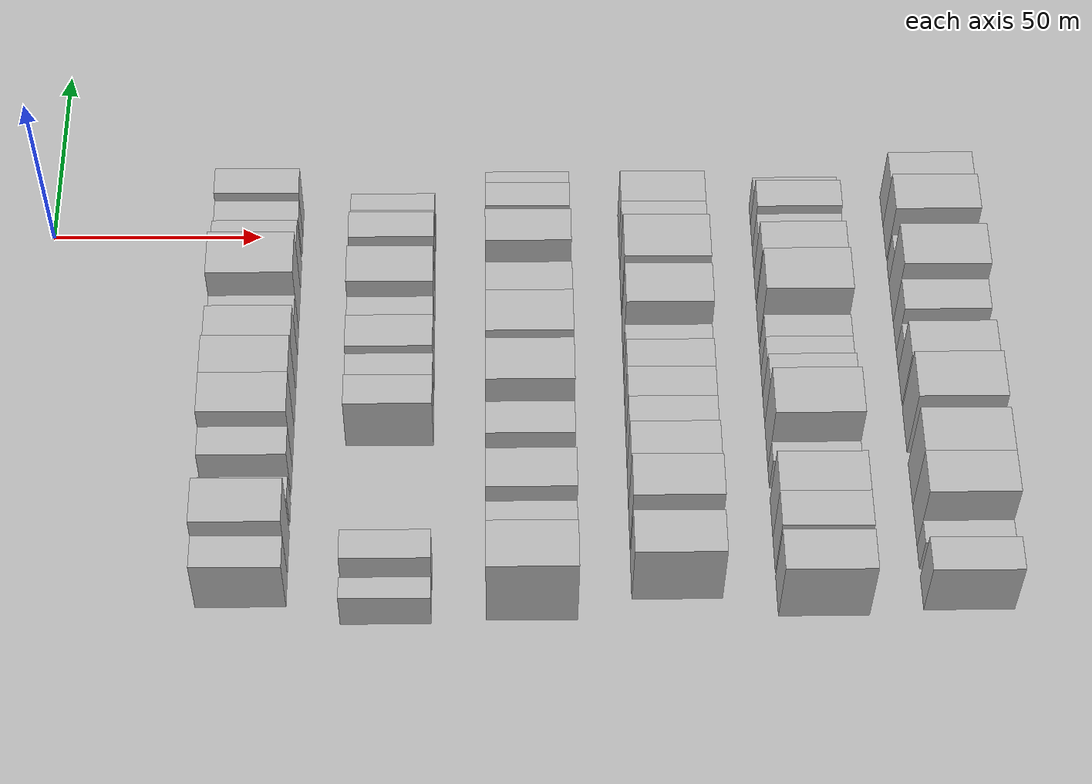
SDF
<sdf version="1.6">
 <world name="default">
  <include><name>ground_plane_1</name><uri>model://HANNAS_ground_plane</uri></include>
  <include>
   <name>ground_plane_2</name>
   <uri>model://HANNAS_ground_plane</uri>
   <pose>100 0 0  0 0 0</pose>
  </include>
  <model name="building_44">
   <static>1</static>
   <pose>50.0000 -97.8108 0 0.000000 0.000000 0.000000</pose>
   <link name="link">
    <pose>0 0 9.00 0 0 0</pose>
    <collision name="collision"><geometry><box><size>20.0000 7.8151 18.0000</size></box></geometry></collision>
    <visual name="visual">
     <cast_shadows>0</cast_shadows>
     <geometry><box><size>20.0000 7.8151 18.0000</size></box></geometry>
     <material>
      <script>
       <uri>model://HANNAS_wall/materials/scripts</uri>
       <uri>model://HANNAS_wall/materials/textures</uri>
       <name>vrc/HANNAS_wall</name>
      </script>
     </material>
    </visual>
   </link>
  </model>
  <model name="building_45">
   <static>1</static>
   <pose>50.0000 -88.4266 0 0.000000 0.000000 0.000000</pose>
   <link name="link">
    <pose>0 0 12.00 0 0 0</pose>
    <collision name="collision"><geometry><box><size>20.0000 10.9532 24.0000</size></box></geometry></collision>
    <visual name="visual">
     <cast_shadows>0</cast_shadows>
     <geometry><box><size>20.0000 10.9532 24.0000</size></box></geometry>
     <material>
      <script>
       <uri>model://HANNAS_wall/materials/scripts</uri>
       <uri>model://HANNAS_wall/materials/textures</uri>
       <name>vrc/HANNAS_wall</name>
      </script>
     </material>
    </visual>
   </link>
  </model>
  <model name="building_46">
   <static>1</static>
   <pose>50.0000 -78.0642 0 0.000000 0.000000 0.000000</pose>
   <link name="link">
    <pose>0 0 6.00 0 0 0</pose>
    <collision name="collision"><geometry><box><size>20.0000 5.7716 12.0000</size></box></geometry></collision>
    <visual name="visual">
     <cast_shadows>0</cast_shadows>
     <geometry><box><size>20.0000 5.7716 12.0000</size></box></geometry>
     <material>
      <script>
       <uri>model://HANNAS_wall/materials/scripts</uri>
       <uri>model://HANNAS_wall/materials/textures</uri>
       <name>vrc/HANNAS_wall</name>
      </script>
     </material>
    </visual>
   </link>
  </model>
  <model name="building_47">
   <static>1</static>
   <pose>50.0000 -69.4956 0 0.000000 0.000000 0.000000</pose>
   <link name="link">
    <pose>0 0 9.00 0 0 0</pose>
    <collision name="collision"><geometry><box><size>20.0000 7.3656 18.0000</size></box></geometry></collision>
    <visual name="visual">
     <cast_shadows>0</cast_shadows>
     <geometry><box><size>20.0000 7.3656 18.0000</size></box></geometry>
     <material>
      <script>
       <uri>model://HANNAS_wall/materials/scripts</uri>
       <uri>model://HANNAS_wall/materials/textures</uri>
       <name>vrc/HANNAS_wall</name>
      </script>
     </material>
    </visual>
   </link>
  </model>
  <model name="building_48">
   <static>1</static>
   <pose>50.0000 -60.5503 0 0.000000 0.000000 0.000000</pose>
   <link name="link">
    <pose>0 0 12.00 0 0 0</pose>
    <collision name="collision"><geometry><box><size>20.0000 10.5250 24.0000</size></box></geometry></collision>
    <visual name="visual">
     <cast_shadows>0</cast_shadows>
     <geometry><box><size>20.0000 10.5250 24.0000</size></box></geometry>
     <material>
      <script>
       <uri>model://HANNAS_wall/materials/scripts</uri>
       <uri>model://HANNAS_wall/materials/textures</uri>
       <name>vrc/HANNAS_wall</name>
      </script>
     </material>
    </visual>
   </link>
  </model>
  <model name="building_49">
   <static>1</static>
   <pose>50.0000 -50.3264 0 0.000000 0.000000 0.000000</pose>
   <link name="link">
    <pose>0 0 12.00 0 0 0</pose>
    <collision name="collision"><geometry><box><size>20.0000 9.9229 24.0000</size></box></geometry></collision>
    <visual name="visual">
     <cast_shadows>0</cast_shadows>
     <geometry><box><size>20.0000 9.9229 24.0000</size></box></geometry>
     <material>
      <script>
       <uri>model://HANNAS_wall/materials/scripts</uri>
       <uri>model://HANNAS_wall/materials/textures</uri>
       <name>vrc/HANNAS_wall</name>
      </script>
     </material>
    </visual>
   </link>
  </model>
  <model name="building_50">
   <static>1</static>
   <pose>50.0000 -40.1800 0 0.000000 0.000000 0.000000</pose>
   <link name="link">
    <pose>0 0 10.50 0 0 0</pose>
    <collision name="collision"><geometry><box><size>20.0000 10.3700 21.0000</size></box></geometry></collision>
    <visual name="visual">
     <cast_shadows>0</cast_shadows>
     <geometry><box><size>20.0000 10.3700 21.0000</size></box></geometry>
     <material>
      <script>
       <uri>model://HANNAS_wall/materials/scripts</uri>
       <uri>model://HANNAS_wall/materials/textures</uri>
       <name>vrc/HANNAS_wall</name>
      </script>
     </material>
    </visual>
   </link>
  </model>
  <model name="building_51">
   <static>1</static>
   <pose>50.0000 -31.4588 0 0.000000 0.000000 0.000000</pose>
   <link name="link">
    <pose>0 0 7.50 0 0 0</pose>
    <collision name="collision"><geometry><box><size>20.0000 7.0724 15.0000</size></box></geometry></collision>
    <visual name="visual">
     <cast_shadows>0</cast_shadows>
     <geometry><box><size>20.0000 7.0724 15.0000</size></box></geometry>
     <material>
      <script>
       <uri>model://HANNAS_wall/materials/scripts</uri>
       <uri>model://HANNAS_wall/materials/textures</uri>
       <name>vrc/HANNAS_wall</name>
      </script>
     </material>
    </visual>
   </link>
  </model>
  <model name="building_52">
   <static>1</static>
   <pose>50.0000 -22.1356 0 0.000000 0.000000 0.000000</pose>
   <link name="link">
    <pose>0 0 12.00 0 0 0</pose>
    <collision name="collision"><geometry><box><size>20.0000 11.5739 24.0000</size></box></geometry></collision>
    <visual name="visual">
     <cast_shadows>0</cast_shadows>
     <geometry><box><size>20.0000 11.5739 24.0000</size></box></geometry>
     <material>
      <script>
       <uri>model://HANNAS_wall/materials/scripts</uri>
       <uri>model://HANNAS_wall/materials/textures</uri>
       <name>vrc/HANNAS_wall</name>
      </script>
     </material>
    </visual>
   </link>
  </model>
  <model name="building_53">
   <static>1</static>
   <pose>50.0000 -12.4399 0 0.000000 0.000000 0.000000</pose>
   <link name="link">
    <pose>0 0 9.00 0 0 0</pose>
    <collision name="collision"><geometry><box><size>20.0000 7.8175 18.0000</size></box></geometry></collision>
    <visual name="visual">
     <cast_shadows>0</cast_shadows>
     <geometry><box><size>20.0000 7.8175 18.0000</size></box></geometry>
     <material>
      <script>
       <uri>model://HANNAS_wall/materials/scripts</uri>
       <uri>model://HANNAS_wall/materials/textures</uri>
       <name>vrc/HANNAS_wall</name>
      </script>
     </material>
    </visual>
   </link>
  </model>
  <model name="building_54">
   <static>1</static>
   <pose>50.0000 -3.4987 0 0.000000 0.000000 0.000000</pose>
   <link name="link">
    <pose>0 0 7.50 0 0 0</pose>
    <collision name="collision"><geometry><box><size>20.0000 6.0649 15.0000</size></box></geometry></collision>
    <visual name="visual">
     <cast_shadows>0</cast_shadows>
     <geometry><box><size>20.0000 6.0649 15.0000</size></box></geometry>
     <material>
      <script>
       <uri>model://HANNAS_wall/materials/scripts</uri>
       <uri>model://HANNAS_wall/materials/textures</uri>
       <name>vrc/HANNAS_wall</name>
      </script>
     </material>
    </visual>
   </link>
  </model>
  <model name="building_55">
   <static>1</static>
   <pose>50.0000 3.2016 0 0.000000 0.000000 0.000000</pose>
   <link name="link">
    <pose>0 0 9.00 0 0 0</pose>
    <collision name="collision"><geometry><box><size>20.0000 7.3358 18.0000</size></box></geometry></collision>
    <visual name="visual">
     <cast_shadows>0</cast_shadows>
     <geometry><box><size>20.0000 7.3358 18.0000</size></box></geometry>
     <material>
      <script>
       <uri>model://HANNAS_wall/materials/scripts</uri>
       <uri>model://HANNAS_wall/materials/textures</uri>
       <name>vrc/HANNAS_wall</name>
      </script>
     </material>
    </visual>
   </link>
  </model>
  <model name="building_169">
   <static>1</static>
   <pose>82.0000 -103.5043 0 0.000000 0.000000 0.000000</pose>
   <link name="link">
    <pose>0 0 6.00 0 0 0</pose>
    <collision name="collision"><geometry><box><size>20.0000 5.2319 12.0000</size></box></geometry></collision>
    <visual name="visual">
     <cast_shadows>0</cast_shadows>
     <geometry><box><size>20.0000 5.2319 12.0000</size></box></geometry>
     <material>
      <script>
       <uri>model://HANNAS_wall/materials/scripts</uri>
       <uri>model://HANNAS_wall/materials/textures</uri>
       <name>vrc/HANNAS_wall</name>
      </script>
     </material>
    </visual>
   </link>
  </model>
  <model name="building_170">
   <static>1</static>
   <pose>82.0000 -94.3085 0 0.000000 0.000000 0.000000</pose>
   <link name="link">
    <pose>0 0 7.50 0 0 0</pose>
    <collision name="collision"><geometry><box><size>20.0000 7.1596 15.0000</size></box></geometry></collision>
    <visual name="visual">
     <cast_shadows>0</cast_shadows>
     <geometry><box><size>20.0000 7.1596 15.0000</size></box></geometry>
     <material>
      <script>
       <uri>model://HANNAS_wall/materials/scripts</uri>
       <uri>model://HANNAS_wall/materials/textures</uri>
       <name>vrc/HANNAS_wall</name>
      </script>
     </material>
    </visual>
   </link>
  </model>
  <model name="building_171">
   <static>1</static>
   <pose>82.0000 -56.0364 0 0.000000 0.000000 0.000000</pose>
   <link name="link">
    <pose>0 0 9.00 0 0 0</pose>
    <collision name="collision"><geometry><box><size>20.0000 7.7949 18.0000</size></box></geometry></collision>
    <visual name="visual">
     <cast_shadows>0</cast_shadows>
     <geometry><box><size>20.0000 7.7949 18.0000</size></box></geometry>
     <material>
      <script>
       <uri>model://HANNAS_wall/materials/scripts</uri>
       <uri>model://HANNAS_wall/materials/textures</uri>
       <name>vrc/HANNAS_wall</name>
      </script>
     </material>
    </visual>
   </link>
  </model>
  <model name="building_172">
   <static>1</static>
   <pose>82.0000 -47.7264 0 0.000000 0.000000 0.000000</pose>
   <link name="link">
    <pose>0 0 7.50 0 0 0</pose>
    <collision name="collision"><geometry><box><size>20.0000 6.8251 15.0000</size></box></geometry></collision>
    <visual name="visual">
     <cast_shadows>0</cast_shadows>
     <geometry><box><size>20.0000 6.8251 15.0000</size></box></geometry>
     <material>
      <script>
       <uri>model://HANNAS_wall/materials/scripts</uri>
       <uri>model://HANNAS_wall/materials/textures</uri>
       <name>vrc/HANNAS_wall</name>
      </script>
     </material>
    </visual>
   </link>
  </model>
  <model name="building_173">
   <static>1</static>
   <pose>82.0000 -40.0137 0 0.000000 0.000000 0.000000</pose>
   <link name="link">
    <pose>0 0 9.00 0 0 0</pose>
    <collision name="collision"><geometry><box><size>20.0000 8.6003 18.0000</size></box></geometry></collision>
    <visual name="visual">
     <cast_shadows>0</cast_shadows>
     <geometry><box><size>20.0000 8.6003 18.0000</size></box></geometry>
     <material>
      <script>
       <uri>model://HANNAS_wall/materials/scripts</uri>
       <uri>model://HANNAS_wall/materials/textures</uri>
       <name>vrc/HANNAS_wall</name>
      </script>
     </material>
    </visual>
   </link>
  </model>
  <model name="building_174">
   <static>1</static>
   <pose>82.0000 -32.0801 0 0.000000 0.000000 0.000000</pose>
   <link name="link">
    <pose>0 0 7.50 0 0 0</pose>
    <collision name="collision"><geometry><box><size>20.0000 7.2669 15.0000</size></box></geometry></collision>
    <visual name="visual">
     <cast_shadows>0</cast_shadows>
     <geometry><box><size>20.0000 7.2669 15.0000</size></box></geometry>
     <material>
      <script>
       <uri>model://HANNAS_wall/materials/scripts</uri>
       <uri>model://HANNAS_wall/materials/textures</uri>
       <name>vrc/HANNAS_wall</name>
      </script>
     </material>
    </visual>
   </link>
  </model>
  <model name="building_175">
   <static>1</static>
   <pose>82.0000 -23.4046 0 0.000000 0.000000 0.000000</pose>
   <link name="link">
    <pose>0 0 10.50 0 0 0</pose>
    <collision name="collision"><geometry><box><size>20.0000 10.0842 21.0000</size></box></geometry></collision>
    <visual name="visual">
     <cast_shadows>0</cast_shadows>
     <geometry><box><size>20.0000 10.0842 21.0000</size></box></geometry>
     <material>
      <script>
       <uri>model://HANNAS_wall/materials/scripts</uri>
       <uri>model://HANNAS_wall/materials/textures</uri>
       <name>vrc/HANNAS_wall</name>
      </script>
     </material>
    </visual>
   </link>
  </model>
  <model name="building_176">
   <static>1</static>
   <pose>82.0000 -15.9410 0 0.000000 0.000000 0.000000</pose>
   <link name="link">
    <pose>0 0 6.00 0 0 0</pose>
    <collision name="collision"><geometry><box><size>20.0000 4.8431 12.0000</size></box></geometry></collision>
    <visual name="visual">
     <cast_shadows>0</cast_shadows>
     <geometry><box><size>20.0000 4.8431 12.0000</size></box></geometry>
     <material>
      <script>
       <uri>model://HANNAS_wall/materials/scripts</uri>
       <uri>model://HANNAS_wall/materials/textures</uri>
       <name>vrc/HANNAS_wall</name>
      </script>
     </material>
    </visual>
   </link>
  </model>
  <model name="building_177">
   <static>1</static>
   <pose>82.0000 -9.8748 0 0.000000 0.000000 0.000000</pose>
   <link name="link">
    <pose>0 0 9.00 0 0 0</pose>
    <collision name="collision"><geometry><box><size>20.0000 7.2894 18.0000</size></box></geometry></collision>
    <visual name="visual">
     <cast_shadows>0</cast_shadows>
     <geometry><box><size>20.0000 7.2894 18.0000</size></box></geometry>
     <material>
      <script>
       <uri>model://HANNAS_wall/materials/scripts</uri>
       <uri>model://HANNAS_wall/materials/textures</uri>
       <name>vrc/HANNAS_wall</name>
      </script>
     </material>
    </visual>
   </link>
  </model>
  <model name="building_178">
   <static>1</static>
   <pose>82.0000 -3.6931 0 0.000000 0.000000 0.000000</pose>
   <link name="link">
    <pose>0 0 6.00 0 0 0</pose>
    <collision name="collision"><geometry><box><size>20.0000 5.0739 12.0000</size></box></geometry></collision>
    <visual name="visual">
     <cast_shadows>0</cast_shadows>
     <geometry><box><size>20.0000 5.0739 12.0000</size></box></geometry>
     <material>
      <script>
       <uri>model://HANNAS_wall/materials/scripts</uri>
       <uri>model://HANNAS_wall/materials/textures</uri>
       <name>vrc/HANNAS_wall</name>
      </script>
     </material>
    </visual>
   </link>
  </model>
  <model name="building_179">
   <static>1</static>
   <pose>82.0000 1.2968 0 0.000000 0.000000 0.000000</pose>
   <link name="link">
    <pose>0 0 6.00 0 0 0</pose>
    <collision name="collision"><geometry><box><size>20.0000 4.9061 12.0000</size></box></geometry></collision>
    <visual name="visual">
     <cast_shadows>0</cast_shadows>
     <geometry><box><size>20.0000 4.9061 12.0000</size></box></geometry>
     <material>
      <script>
       <uri>model://HANNAS_wall/materials/scripts</uri>
       <uri>model://HANNAS_wall/materials/textures</uri>
       <name>vrc/HANNAS_wall</name>
      </script>
     </material>
    </visual>
   </link>
  </model>
  <model name="building_291">
   <static>1</static>
   <pose>114.0000 -99.6040 0 0.000000 0.000000 0.000000</pose>
   <link name="link">
    <pose>0 0 12.00 0 0 0</pose>
    <collision name="collision"><geometry><box><size>20.0000 11.4271 24.0000</size></box></geometry></collision>
    <visual name="visual">
     <cast_shadows>0</cast_shadows>
     <geometry><box><size>20.0000 11.4271 24.0000</size></box></geometry>
     <material>
      <script>
       <uri>model://HANNAS_wall/materials/scripts</uri>
       <uri>model://HANNAS_wall/materials/textures</uri>
       <name>vrc/HANNAS_wall</name>
      </script>
     </material>
    </visual>
   </link>
  </model>
  <model name="building_292">
   <static>1</static>
   <pose>114.0000 -89.6748 0 0.000000 0.000000 0.000000</pose>
   <link name="link">
    <pose>0 0 9.00 0 0 0</pose>
    <collision name="collision"><geometry><box><size>20.0000 8.4313 18.0000</size></box></geometry></collision>
    <visual name="visual">
     <cast_shadows>0</cast_shadows>
     <geometry><box><size>20.0000 8.4313 18.0000</size></box></geometry>
     <material>
      <script>
       <uri>model://HANNAS_wall/materials/scripts</uri>
       <uri>model://HANNAS_wall/materials/textures</uri>
       <name>vrc/HANNAS_wall</name>
      </script>
     </material>
    </visual>
   </link>
  </model>
  <model name="building_293">
   <static>1</static>
   <pose>114.0000 -80.5067 0 0.000000 0.000000 0.000000</pose>
   <link name="link">
    <pose>0 0 12.00 0 0 0</pose>
    <collision name="collision"><geometry><box><size>20.0000 9.9049 24.0000</size></box></geometry></collision>
    <visual name="visual">
     <cast_shadows>0</cast_shadows>
     <geometry><box><size>20.0000 9.9049 24.0000</size></box></geometry>
     <material>
      <script>
       <uri>model://HANNAS_wall/materials/scripts</uri>
       <uri>model://HANNAS_wall/materials/textures</uri>
       <name>vrc/HANNAS_wall</name>
      </script>
     </material>
    </visual>
   </link>
  </model>
  <model name="building_294">
   <static>1</static>
   <pose>114.0000 -72.7175 0 0.000000 0.000000 0.000000</pose>
   <link name="link">
    <pose>0 0 6.00 0 0 0</pose>
    <collision name="collision"><geometry><box><size>20.0000 5.6733 12.0000</size></box></geometry></collision>
    <visual name="visual">
     <cast_shadows>0</cast_shadows>
     <geometry><box><size>20.0000 5.6733 12.0000</size></box></geometry>
     <material>
      <script>
       <uri>model://HANNAS_wall/materials/scripts</uri>
       <uri>model://HANNAS_wall/materials/textures</uri>
       <name>vrc/HANNAS_wall</name>
      </script>
     </material>
    </visual>
   </link>
  </model>
  <model name="building_295">
   <static>1</static>
   <pose>114.0000 -63.6943 0 0.000000 0.000000 0.000000</pose>
   <link name="link">
    <pose>0 0 9.00 0 0 0</pose>
    <collision name="collision"><geometry><box><size>20.0000 8.3732 18.0000</size></box></geometry></collision>
    <visual name="visual">
     <cast_shadows>0</cast_shadows>
     <geometry><box><size>20.0000 8.3732 18.0000</size></box></geometry>
     <material>
      <script>
       <uri>model://HANNAS_wall/materials/scripts</uri>
       <uri>model://HANNAS_wall/materials/textures</uri>
       <name>vrc/HANNAS_wall</name>
      </script>
     </material>
    </visual>
   </link>
  </model>
  <model name="building_296">
   <static>1</static>
   <pose>114.0000 -51.9372 0 0.000000 0.000000 0.000000</pose>
   <link name="link">
    <pose>0 0 12.00 0 0 0</pose>
    <collision name="collision"><geometry><box><size>20.0000 11.1409 24.0000</size></box></geometry></collision>
    <visual name="visual">
     <cast_shadows>0</cast_shadows>
     <geometry><box><size>20.0000 11.1409 24.0000</size></box></geometry>
     <material>
      <script>
       <uri>model://HANNAS_wall/materials/scripts</uri>
       <uri>model://HANNAS_wall/materials/textures</uri>
       <name>vrc/HANNAS_wall</name>
      </script>
     </material>
    </visual>
   </link>
  </model>
  <model name="building_297">
   <static>1</static>
   <pose>114.0000 -38.7687 0 0.000000 0.000000 0.000000</pose>
   <link name="link">
    <pose>0 0 12.00 0 0 0</pose>
    <collision name="collision"><geometry><box><size>20.0000 11.1961 24.0000</size></box></geometry></collision>
    <visual name="visual">
     <cast_shadows>0</cast_shadows>
     <geometry><box><size>20.0000 11.1961 24.0000</size></box></geometry>
     <material>
      <script>
       <uri>model://HANNAS_wall/materials/scripts</uri>
       <uri>model://HANNAS_wall/materials/textures</uri>
       <name>vrc/HANNAS_wall</name>
      </script>
     </material>
    </visual>
   </link>
  </model>
  <model name="building_298">
   <static>1</static>
   <pose>114.0000 -27.6499 0 0.000000 0.000000 0.000000</pose>
   <link name="link">
    <pose>0 0 10.50 0 0 0</pose>
    <collision name="collision"><geometry><box><size>20.0000 9.0417 21.0000</size></box></geometry></collision>
    <visual name="visual">
     <cast_shadows>0</cast_shadows>
     <geometry><box><size>20.0000 9.0417 21.0000</size></box></geometry>
     <material>
      <script>
       <uri>model://HANNAS_wall/materials/scripts</uri>
       <uri>model://HANNAS_wall/materials/textures</uri>
       <name>vrc/HANNAS_wall</name>
      </script>
     </material>
    </visual>
   </link>
  </model>
  <model name="building_299">
   <static>1</static>
   <pose>114.0000 -19.5275 0 0.000000 0.000000 0.000000</pose>
   <link name="link">
    <pose>0 0 6.00 0 0 0</pose>
    <collision name="collision"><geometry><box><size>20.0000 5.2030 12.0000</size></box></geometry></collision>
    <visual name="visual">
     <cast_shadows>0</cast_shadows>
     <geometry><box><size>20.0000 5.2030 12.0000</size></box></geometry>
     <material>
      <script>
       <uri>model://HANNAS_wall/materials/scripts</uri>
       <uri>model://HANNAS_wall/materials/textures</uri>
       <name>vrc/HANNAS_wall</name>
      </script>
     </material>
    </visual>
   </link>
  </model>
  <model name="building_300">
   <static>1</static>
   <pose>114.0000 -12.3879 0 0.000000 0.000000 0.000000</pose>
   <link name="link">
    <pose>0 0 10.50 0 0 0</pose>
    <collision name="collision"><geometry><box><size>20.0000 9.0762 21.0000</size></box></geometry></collision>
    <visual name="visual">
     <cast_shadows>0</cast_shadows>
     <geometry><box><size>20.0000 9.0762 21.0000</size></box></geometry>
     <material>
      <script>
       <uri>model://HANNAS_wall/materials/scripts</uri>
       <uri>model://HANNAS_wall/materials/textures</uri>
       <name>vrc/HANNAS_wall</name>
      </script>
     </material>
    </visual>
   </link>
  </model>
  <model name="building_301">
   <static>1</static>
   <pose>114.0000 -5.0800 0 0.000000 0.000000 0.000000</pose>
   <link name="link">
    <pose>0 0 6.00 0 0 0</pose>
    <collision name="collision"><geometry><box><size>20.0000 5.5395 12.0000</size></box></geometry></collision>
    <visual name="visual">
     <cast_shadows>0</cast_shadows>
     <geometry><box><size>20.0000 5.5395 12.0000</size></box></geometry>
     <material>
      <script>
       <uri>model://HANNAS_wall/materials/scripts</uri>
       <uri>model://HANNAS_wall/materials/textures</uri>
       <name>vrc/HANNAS_wall</name>
      </script>
     </material>
    </visual>
   </link>
  </model>
  <model name="building_302">
   <static>1</static>
   <pose>114.0000 1.1679 0 0.000000 0.000000 0.000000</pose>
   <link name="link">
    <pose>0 0 7.50 0 0 0</pose>
    <collision name="collision"><geometry><box><size>20.0000 6.9563 15.0000</size></box></geometry></collision>
    <visual name="visual">
     <cast_shadows>0</cast_shadows>
     <geometry><box><size>20.0000 6.9563 15.0000</size></box></geometry>
     <material>
      <script>
       <uri>model://HANNAS_wall/materials/scripts</uri>
       <uri>model://HANNAS_wall/materials/textures</uri>
       <name>vrc/HANNAS_wall</name>
      </script>
     </material>
    </visual>
   </link>
  </model>
  <model name="building_303">
   <static>1</static>
   <pose>114.0000 7.4035 0 0.000000 0.000000 0.000000</pose>
   <link name="link">
    <pose>0 0 6.00 0 0 0</pose>
    <collision name="collision"><geometry><box><size>20.0000 5.5149 12.0000</size></box></geometry></collision>
    <visual name="visual">
     <cast_shadows>0</cast_shadows>
     <geometry><box><size>20.0000 5.5149 12.0000</size></box></geometry>
     <material>
      <script>
       <uri>model://HANNAS_wall/materials/scripts</uri>
       <uri>model://HANNAS_wall/materials/textures</uri>
       <name>vrc/HANNAS_wall</name>
      </script>
     </material>
    </visual>
   </link>
  </model>
  <model name="building_411">
   <static>1</static>
   <pose>146.0000 -95.0143 0 0.000000 0.000000 0.000000</pose>
   <link name="link">
    <pose>0 0 10.50 0 0 0</pose>
    <collision name="collision"><geometry><box><size>20.0000 10.4817 21.0000</size></box></geometry></collision>
    <visual name="visual">
     <cast_shadows>0</cast_shadows>
     <geometry><box><size>20.0000 10.4817 21.0000</size></box></geometry>
     <material>
      <script>
       <uri>model://HANNAS_wall/materials/scripts</uri>
       <uri>model://HANNAS_wall/materials/textures</uri>
       <name>vrc/HANNAS_wall</name>
      </script>
     </material>
    </visual>
   </link>
  </model>
  <model name="building_412">
   <static>1</static>
   <pose>146.0000 -82.5199 0 0.000000 0.000000 0.000000</pose>
   <link name="link">
    <pose>0 0 12.00 0 0 0</pose>
    <collision name="collision"><geometry><box><size>20.0000 10.5071 24.0000</size></box></geometry></collision>
    <visual name="visual">
     <cast_shadows>0</cast_shadows>
     <geometry><box><size>20.0000 10.5071 24.0000</size></box></geometry>
     <material>
      <script>
       <uri>model://HANNAS_wall/materials/scripts</uri>
       <uri>model://HANNAS_wall/materials/textures</uri>
       <name>vrc/HANNAS_wall</name>
      </script>
     </material>
    </visual>
   </link>
  </model>
  <model name="building_413">
   <static>1</static>
   <pose>146.0000 -72.0682 0 0.000000 0.000000 0.000000</pose>
   <link name="link">
    <pose>0 0 10.50 0 0 0</pose>
    <collision name="collision"><geometry><box><size>20.0000 10.3963 21.0000</size></box></geometry></collision>
    <visual name="visual">
     <cast_shadows>0</cast_shadows>
     <geometry><box><size>20.0000 10.3963 21.0000</size></box></geometry>
     <material>
      <script>
       <uri>model://HANNAS_wall/materials/scripts</uri>
       <uri>model://HANNAS_wall/materials/textures</uri>
       <name>vrc/HANNAS_wall</name>
      </script>
     </material>
    </visual>
   </link>
  </model>
  <model name="building_414">
   <static>1</static>
   <pose>146.0000 -62.5730 0 0.000000 0.000000 0.000000</pose>
   <link name="link">
    <pose>0 0 9.00 0 0 0</pose>
    <collision name="collision"><geometry><box><size>20.0000 8.5942 18.0000</size></box></geometry></collision>
    <visual name="visual">
     <cast_shadows>0</cast_shadows>
     <geometry><box><size>20.0000 8.5942 18.0000</size></box></geometry>
     <material>
      <script>
       <uri>model://HANNAS_wall/materials/scripts</uri>
       <uri>model://HANNAS_wall/materials/textures</uri>
       <name>vrc/HANNAS_wall</name>
      </script>
     </material>
    </visual>
   </link>
  </model>
  <model name="building_415">
   <static>1</static>
   <pose>146.0000 -54.2857 0 0.000000 0.000000 0.000000</pose>
   <link name="link">
    <pose>0 0 9.00 0 0 0</pose>
    <collision name="collision"><geometry><box><size>20.0000 7.9803 18.0000</size></box></geometry></collision>
    <visual name="visual">
     <cast_shadows>0</cast_shadows>
     <geometry><box><size>20.0000 7.9803 18.0000</size></box></geometry>
     <material>
      <script>
       <uri>model://HANNAS_wall/materials/scripts</uri>
       <uri>model://HANNAS_wall/materials/textures</uri>
       <name>vrc/HANNAS_wall</name>
      </script>
     </material>
    </visual>
   </link>
  </model>
  <model name="building_416">
   <static>1</static>
   <pose>146.0000 -46.5705 0 0.000000 0.000000 0.000000</pose>
   <link name="link">
    <pose>0 0 9.00 0 0 0</pose>
    <collision name="collision"><geometry><box><size>20.0000 7.4501 18.0000</size></box></geometry></collision>
    <visual name="visual">
     <cast_shadows>0</cast_shadows>
     <geometry><box><size>20.0000 7.4501 18.0000</size></box></geometry>
     <material>
      <script>
       <uri>model://HANNAS_wall/materials/scripts</uri>
       <uri>model://HANNAS_wall/materials/textures</uri>
       <name>vrc/HANNAS_wall</name>
      </script>
     </material>
    </visual>
   </link>
  </model>
  <model name="building_417">
   <static>1</static>
   <pose>146.0000 -39.7782 0 0.000000 0.000000 0.000000</pose>
   <link name="link">
    <pose>0 0 7.50 0 0 0</pose>
    <collision name="collision"><geometry><box><size>20.0000 6.1346 15.0000</size></box></geometry></collision>
    <visual name="visual">
     <cast_shadows>0</cast_shadows>
     <geometry><box><size>20.0000 6.1346 15.0000</size></box></geometry>
     <material>
      <script>
       <uri>model://HANNAS_wall/materials/scripts</uri>
       <uri>model://HANNAS_wall/materials/textures</uri>
       <name>vrc/HANNAS_wall</name>
      </script>
     </material>
    </visual>
   </link>
  </model>
  <model name="building_418">
   <static>1</static>
   <pose>146.0000 -31.2885 0 0.000000 0.000000 0.000000</pose>
   <link name="link">
    <pose>0 0 12.00 0 0 0</pose>
    <collision name="collision"><geometry><box><size>20.0000 10.8448 24.0000</size></box></geometry></collision>
    <visual name="visual">
     <cast_shadows>0</cast_shadows>
     <geometry><box><size>20.0000 10.8448 24.0000</size></box></geometry>
     <material>
      <script>
       <uri>model://HANNAS_wall/materials/scripts</uri>
       <uri>model://HANNAS_wall/materials/textures</uri>
       <name>vrc/HANNAS_wall</name>
      </script>
     </material>
    </visual>
   </link>
  </model>
  <model name="building_419">
   <static>1</static>
   <pose>146.0000 -17.8905 0 0.000000 0.000000 0.000000</pose>
   <link name="link">
    <pose>0 0 12.00 0 0 0</pose>
    <collision name="collision"><geometry><box><size>20.0000 11.9510 24.0000</size></box></geometry></collision>
    <visual name="visual">
     <cast_shadows>0</cast_shadows>
     <geometry><box><size>20.0000 11.9510 24.0000</size></box></geometry>
     <material>
      <script>
       <uri>model://HANNAS_wall/materials/scripts</uri>
       <uri>model://HANNAS_wall/materials/textures</uri>
       <name>vrc/HANNAS_wall</name>
      </script>
     </material>
    </visual>
   </link>
  </model>
  <model name="building_420">
   <static>1</static>
   <pose>146.0000 -7.6861 0 0.000000 0.000000 0.000000</pose>
   <link name="link">
    <pose>0 0 9.00 0 0 0</pose>
    <collision name="collision"><geometry><box><size>20.0000 8.4579 18.0000</size></box></geometry></collision>
    <visual name="visual">
     <cast_shadows>0</cast_shadows>
     <geometry><box><size>20.0000 8.4579 18.0000</size></box></geometry>
     <material>
      <script>
       <uri>model://HANNAS_wall/materials/scripts</uri>
       <uri>model://HANNAS_wall/materials/textures</uri>
       <name>vrc/HANNAS_wall</name>
      </script>
     </material>
    </visual>
   </link>
  </model>
  <model name="building_421">
   <static>1</static>
   <pose>146.0000 1.0330 0 0.000000 0.000000 0.000000</pose>
   <link name="link">
    <pose>0 0 9.00 0 0 0</pose>
    <collision name="collision"><geometry><box><size>20.0000 8.9803 18.0000</size></box></geometry></collision>
    <visual name="visual">
     <cast_shadows>0</cast_shadows>
     <geometry><box><size>20.0000 8.9803 18.0000</size></box></geometry>
     <material>
      <script>
       <uri>model://HANNAS_wall/materials/scripts</uri>
       <uri>model://HANNAS_wall/materials/textures</uri>
       <name>vrc/HANNAS_wall</name>
      </script>
     </material>
    </visual>
   </link>
  </model>
  <model name="building_531">
   <static>1</static>
   <pose>178.0000 -99.7593 0 0.000000 0.000000 0.000000</pose>
   <link name="link">
    <pose>0 0 10.50 0 0 0</pose>
    <collision name="collision"><geometry><box><size>20.0000 9.8299 21.0000</size></box></geometry></collision>
    <visual name="visual">
     <cast_shadows>0</cast_shadows>
     <geometry><box><size>20.0000 9.8299 21.0000</size></box></geometry>
     <material>
      <script>
       <uri>model://HANNAS_wall/materials/scripts</uri>
       <uri>model://HANNAS_wall/materials/textures</uri>
       <name>vrc/HANNAS_wall</name>
      </script>
     </material>
    </visual>
   </link>
  </model>
  <model name="building_532">
   <static>1</static>
   <pose>178.0000 -89.4629 0 0.000000 0.000000 0.000000</pose>
   <link name="link">
    <pose>0 0 10.50 0 0 0</pose>
    <collision name="collision"><geometry><box><size>20.0000 8.7628 21.0000</size></box></geometry></collision>
    <visual name="visual">
     <cast_shadows>0</cast_shadows>
     <geometry><box><size>20.0000 8.7628 21.0000</size></box></geometry>
     <material>
      <script>
       <uri>model://HANNAS_wall/materials/scripts</uri>
       <uri>model://HANNAS_wall/materials/textures</uri>
       <name>vrc/HANNAS_wall</name>
      </script>
     </material>
    </visual>
   </link>
  </model>
  <model name="building_533">
   <static>1</static>
   <pose>178.0000 -80.0315 0 0.000000 0.000000 0.000000</pose>
   <link name="link">
    <pose>0 0 10.50 0 0 0</pose>
    <collision name="collision"><geometry><box><size>20.0000 10.1002 21.0000</size></box></geometry></collision>
    <visual name="visual">
     <cast_shadows>0</cast_shadows>
     <geometry><box><size>20.0000 10.1002 21.0000</size></box></geometry>
     <material>
      <script>
       <uri>model://HANNAS_wall/materials/scripts</uri>
       <uri>model://HANNAS_wall/materials/textures</uri>
       <name>vrc/HANNAS_wall</name>
      </script>
     </material>
    </visual>
   </link>
  </model>
  <model name="building_534">
   <static>1</static>
   <pose>178.0000 -69.3921 0 0.000000 0.000000 0.000000</pose>
   <link name="link">
    <pose>0 0 6.00 0 0 0</pose>
    <collision name="collision"><geometry><box><size>20.0000 5.1786 12.0000</size></box></geometry></collision>
    <visual name="visual">
     <cast_shadows>0</cast_shadows>
     <geometry><box><size>20.0000 5.1786 12.0000</size></box></geometry>
     <material>
      <script>
       <uri>model://HANNAS_wall/materials/scripts</uri>
       <uri>model://HANNAS_wall/materials/textures</uri>
       <name>vrc/HANNAS_wall</name>
      </script>
     </material>
    </visual>
   </link>
  </model>
  <model name="building_535">
   <static>1</static>
   <pose>178.0000 -60.8383 0 0.000000 0.000000 0.000000</pose>
   <link name="link">
    <pose>0 0 12.00 0 0 0</pose>
    <collision name="collision"><geometry><box><size>20.0000 11.9290 24.0000</size></box></geometry></collision>
    <visual name="visual">
     <cast_shadows>0</cast_shadows>
     <geometry><box><size>20.0000 11.9290 24.0000</size></box></geometry>
     <material>
      <script>
       <uri>model://HANNAS_wall/materials/scripts</uri>
       <uri>model://HANNAS_wall/materials/textures</uri>
       <name>vrc/HANNAS_wall</name>
      </script>
     </material>
    </visual>
   </link>
  </model>
  <model name="building_536">
   <static>1</static>
   <pose>178.0000 -50.9607 0 0.000000 0.000000 0.000000</pose>
   <link name="link">
    <pose>0 0 9.00 0 0 0</pose>
    <collision name="collision"><geometry><box><size>20.0000 7.8262 18.0000</size></box></geometry></collision>
    <visual name="visual">
     <cast_shadows>0</cast_shadows>
     <geometry><box><size>20.0000 7.8262 18.0000</size></box></geometry>
     <material>
      <script>
       <uri>model://HANNAS_wall/materials/scripts</uri>
       <uri>model://HANNAS_wall/materials/textures</uri>
       <name>vrc/HANNAS_wall</name>
      </script>
     </material>
    </visual>
   </link>
  </model>
  <model name="building_537">
   <static>1</static>
   <pose>178.0000 -43.6544 0 0.000000 0.000000 0.000000</pose>
   <link name="link">
    <pose>0 0 7.50 0 0 0</pose>
    <collision name="collision"><geometry><box><size>20.0000 6.7865 15.0000</size></box></geometry></collision>
    <visual name="visual">
     <cast_shadows>0</cast_shadows>
     <geometry><box><size>20.0000 6.7865 15.0000</size></box></geometry>
     <material>
      <script>
       <uri>model://HANNAS_wall/materials/scripts</uri>
       <uri>model://HANNAS_wall/materials/textures</uri>
       <name>vrc/HANNAS_wall</name>
      </script>
     </material>
    </visual>
   </link>
  </model>
  <model name="building_538">
   <static>1</static>
   <pose>178.0000 -37.2416 0 0.000000 0.000000 0.000000</pose>
   <link name="link">
    <pose>0 0 7.50 0 0 0</pose>
    <collision name="collision"><geometry><box><size>20.0000 6.0391 15.0000</size></box></geometry></collision>
    <visual name="visual">
     <cast_shadows>0</cast_shadows>
     <geometry><box><size>20.0000 6.0391 15.0000</size></box></geometry>
     <material>
      <script>
       <uri>model://HANNAS_wall/materials/scripts</uri>
       <uri>model://HANNAS_wall/materials/textures</uri>
       <name>vrc/HANNAS_wall</name>
      </script>
     </material>
    </visual>
   </link>
  </model>
  <model name="building_539">
   <static>1</static>
   <pose>178.0000 -27.4934 0 0.000000 0.000000 0.000000</pose>
   <link name="link">
    <pose>0 0 12.00 0 0 0</pose>
    <collision name="collision"><geometry><box><size>20.0000 11.4574 24.0000</size></box></geometry></collision>
    <visual name="visual">
     <cast_shadows>0</cast_shadows>
     <geometry><box><size>20.0000 11.4574 24.0000</size></box></geometry>
     <material>
      <script>
       <uri>model://HANNAS_wall/materials/scripts</uri>
       <uri>model://HANNAS_wall/materials/textures</uri>
       <name>vrc/HANNAS_wall</name>
      </script>
     </material>
    </visual>
   </link>
  </model>
  <model name="building_540">
   <static>1</static>
   <pose>178.0000 -16.3522 0 0.000000 0.000000 0.000000</pose>
   <link name="link">
    <pose>0 0 10.50 0 0 0</pose>
    <collision name="collision"><geometry><box><size>20.0000 8.8249 21.0000</size></box></geometry></collision>
    <visual name="visual">
     <cast_shadows>0</cast_shadows>
     <geometry><box><size>20.0000 8.8249 21.0000</size></box></geometry>
     <material>
      <script>
       <uri>model://HANNAS_wall/materials/scripts</uri>
       <uri>model://HANNAS_wall/materials/textures</uri>
       <name>vrc/HANNAS_wall</name>
      </script>
     </material>
    </visual>
   </link>
  </model>
  <model name="building_541">
   <static>1</static>
   <pose>178.0000 -8.5341 0 0.000000 0.000000 0.000000</pose>
   <link name="link">
    <pose>0 0 7.50 0 0 0</pose>
    <collision name="collision"><geometry><box><size>20.0000 6.8113 15.0000</size></box></geometry></collision>
    <visual name="visual">
     <cast_shadows>0</cast_shadows>
     <geometry><box><size>20.0000 6.8113 15.0000</size></box></geometry>
     <material>
      <script>
       <uri>model://HANNAS_wall/materials/scripts</uri>
       <uri>model://HANNAS_wall/materials/textures</uri>
       <name>vrc/HANNAS_wall</name>
      </script>
     </material>
    </visual>
   </link>
  </model>
  <model name="building_542">
   <static>1</static>
   <pose>178.0000 -1.2937 0 0.000000 0.000000 0.000000</pose>
   <link name="link">
    <pose>0 0 9.00 0 0 0</pose>
    <collision name="collision"><geometry><box><size>20.0000 7.6696 18.0000</size></box></geometry></collision>
    <visual name="visual">
     <cast_shadows>0</cast_shadows>
     <geometry><box><size>20.0000 7.6696 18.0000</size></box></geometry>
     <material>
      <script>
       <uri>model://HANNAS_wall/materials/scripts</uri>
       <uri>model://HANNAS_wall/materials/textures</uri>
       <name>vrc/HANNAS_wall</name>
      </script>
     </material>
    </visual>
   </link>
  </model>
  <model name="building_543">
   <static>1</static>
   <pose>178.0000 5.2963 0 0.000000 0.000000 0.000000</pose>
   <link name="link">
    <pose>0 0 6.00 0 0 0</pose>
    <collision name="collision"><geometry><box><size>20.0000 5.5104 12.0000</size></box></geometry></collision>
    <visual name="visual">
     <cast_shadows>0</cast_shadows>
     <geometry><box><size>20.0000 5.5104 12.0000</size></box></geometry>
     <material>
      <script>
       <uri>model://HANNAS_wall/materials/scripts</uri>
       <uri>model://HANNAS_wall/materials/textures</uri>
       <name>vrc/HANNAS_wall</name>
      </script>
     </material>
    </visual>
   </link>
  </model>
  <model name="building_651">
   <static>1</static>
   <pose>210.0000 -99.2689 0 0.000000 0.000000 0.000000</pose>
   <link name="link">
    <pose>0 0 9.00 0 0 0</pose>
    <collision name="collision"><geometry><box><size>20.0000 8.2068 18.0000</size></box></geometry></collision>
    <visual name="visual">
     <cast_shadows>0</cast_shadows>
     <geometry><box><size>20.0000 8.2068 18.0000</size></box></geometry>
     <material>
      <script>
       <uri>model://HANNAS_wall/materials/scripts</uri>
       <uri>model://HANNAS_wall/materials/textures</uri>
       <name>vrc/HANNAS_wall</name>
      </script>
     </material>
    </visual>
   </link>
  </model>
  <model name="building_652">
   <static>1</static>
   <pose>210.0000 -90.3075 0 0.000000 0.000000 0.000000</pose>
   <link name="link">
    <pose>0 0 6.00 0 0 0</pose>
    <collision name="collision"><geometry><box><size>20.0000 5.7161 12.0000</size></box></geometry></collision>
    <visual name="visual">
     <cast_shadows>0</cast_shadows>
     <geometry><box><size>20.0000 5.7161 12.0000</size></box></geometry>
     <material>
      <script>
       <uri>model://HANNAS_wall/materials/scripts</uri>
       <uri>model://HANNAS_wall/materials/textures</uri>
       <name>vrc/HANNAS_wall</name>
      </script>
     </material>
    </visual>
   </link>
  </model>
  <model name="building_653">
   <static>1</static>
   <pose>210.0000 -82.2055 0 0.000000 0.000000 0.000000</pose>
   <link name="link">
    <pose>0 0 12.00 0 0 0</pose>
    <collision name="collision"><geometry><box><size>20.0000 10.4880 24.0000</size></box></geometry></collision>
    <visual name="visual">
     <cast_shadows>0</cast_shadows>
     <geometry><box><size>20.0000 10.4880 24.0000</size></box></geometry>
     <material>
      <script>
       <uri>model://HANNAS_wall/materials/scripts</uri>
       <uri>model://HANNAS_wall/materials/textures</uri>
       <name>vrc/HANNAS_wall</name>
      </script>
     </material>
    </visual>
   </link>
  </model>
  <model name="building_654">
   <static>1</static>
   <pose>210.0000 -71.3186 0 0.000000 0.000000 0.000000</pose>
   <link name="link">
    <pose>0 0 12.00 0 0 0</pose>
    <collision name="collision"><geometry><box><size>20.0000 11.2857 24.0000</size></box></geometry></collision>
    <visual name="visual">
     <cast_shadows>0</cast_shadows>
     <geometry><box><size>20.0000 11.2857 24.0000</size></box></geometry>
     <material>
      <script>
       <uri>model://HANNAS_wall/materials/scripts</uri>
       <uri>model://HANNAS_wall/materials/textures</uri>
       <name>vrc/HANNAS_wall</name>
      </script>
     </material>
    </visual>
   </link>
  </model>
  <model name="building_655">
   <static>1</static>
   <pose>210.0000 -56.7096 0 0.000000 0.000000 0.000000</pose>
   <link name="link">
    <pose>0 0 12.00 0 0 0</pose>
    <collision name="collision"><geometry><box><size>20.0000 11.9323 24.0000</size></box></geometry></collision>
    <visual name="visual">
     <cast_shadows>0</cast_shadows>
     <geometry><box><size>20.0000 11.9323 24.0000</size></box></geometry>
     <material>
      <script>
       <uri>model://HANNAS_wall/materials/scripts</uri>
       <uri>model://HANNAS_wall/materials/textures</uri>
       <name>vrc/HANNAS_wall</name>
      </script>
     </material>
    </visual>
   </link>
  </model>
  <model name="building_656">
   <static>1</static>
   <pose>210.0000 -45.0108 0 0.000000 0.000000 0.000000</pose>
   <link name="link">
    <pose>0 0 10.50 0 0 0</pose>
    <collision name="collision"><geometry><box><size>20.0000 9.4652 21.0000</size></box></geometry></collision>
    <visual name="visual">
     <cast_shadows>0</cast_shadows>
     <geometry><box><size>20.0000 9.4652 21.0000</size></box></geometry>
     <material>
      <script>
       <uri>model://HANNAS_wall/materials/scripts</uri>
       <uri>model://HANNAS_wall/materials/textures</uri>
       <name>vrc/HANNAS_wall</name>
      </script>
     </material>
    </visual>
   </link>
  </model>
  <model name="building_657">
   <static>1</static>
   <pose>210.0000 -37.5831 0 0.000000 0.000000 0.000000</pose>
   <link name="link">
    <pose>0 0 6.00 0 0 0</pose>
    <collision name="collision"><geometry><box><size>20.0000 5.3903 12.0000</size></box></geometry></collision>
    <visual name="visual">
     <cast_shadows>0</cast_shadows>
     <geometry><box><size>20.0000 5.3903 12.0000</size></box></geometry>
     <material>
      <script>
       <uri>model://HANNAS_wall/materials/scripts</uri>
       <uri>model://HANNAS_wall/materials/textures</uri>
       <name>vrc/HANNAS_wall</name>
      </script>
     </material>
    </visual>
   </link>
  </model>
  <model name="building_658">
   <static>1</static>
   <pose>210.0000 -30.6978 0 0.000000 0.000000 0.000000</pose>
   <link name="link">
    <pose>0 0 9.00 0 0 0</pose>
    <collision name="collision"><geometry><box><size>20.0000 8.3803 18.0000</size></box></geometry></collision>
    <visual name="visual">
     <cast_shadows>0</cast_shadows>
     <geometry><box><size>20.0000 8.3803 18.0000</size></box></geometry>
     <material>
      <script>
       <uri>model://HANNAS_wall/materials/scripts</uri>
       <uri>model://HANNAS_wall/materials/textures</uri>
       <name>vrc/HANNAS_wall</name>
      </script>
     </material>
    </visual>
   </link>
  </model>
  <model name="building_659">
   <static>1</static>
   <pose>210.0000 -20.7724 0 0.000000 0.000000 0.000000</pose>
   <link name="link">
    <pose>0 0 12.00 0 0 0</pose>
    <collision name="collision"><geometry><box><size>20.0000 11.4706 24.0000</size></box></geometry></collision>
    <visual name="visual">
     <cast_shadows>0</cast_shadows>
     <geometry><box><size>20.0000 11.4706 24.0000</size></box></geometry>
     <material>
      <script>
       <uri>model://HANNAS_wall/materials/scripts</uri>
       <uri>model://HANNAS_wall/materials/textures</uri>
       <name>vrc/HANNAS_wall</name>
      </script>
     </material>
    </visual>
   </link>
  </model>
  <model name="building_660">
   <static>1</static>
   <pose>210.0000 -12.1888 0 0.000000 0.000000 0.000000</pose>
   <link name="link">
    <pose>0 0 6.00 0 0 0</pose>
    <collision name="collision"><geometry><box><size>20.0000 5.6967 12.0000</size></box></geometry></collision>
    <visual name="visual">
     <cast_shadows>0</cast_shadows>
     <geometry><box><size>20.0000 5.6967 12.0000</size></box></geometry>
     <material>
      <script>
       <uri>model://HANNAS_wall/materials/scripts</uri>
       <uri>model://HANNAS_wall/materials/textures</uri>
       <name>vrc/HANNAS_wall</name>
      </script>
     </material>
    </visual>
   </link>
  </model>
  <model name="building_661">
   <static>1</static>
   <pose>210.0000 -3.2535 0 0.000000 0.000000 0.000000</pose>
   <link name="link">
    <pose>0 0 10.50 0 0 0</pose>
    <collision name="collision"><geometry><box><size>20.0000 10.1739 21.0000</size></box></geometry></collision>
    <visual name="visual">
     <cast_shadows>0</cast_shadows>
     <geometry><box><size>20.0000 10.1739 21.0000</size></box></geometry>
     <material>
      <script>
       <uri>model://HANNAS_wall/materials/scripts</uri>
       <uri>model://HANNAS_wall/materials/textures</uri>
       <name>vrc/HANNAS_wall</name>
      </script>
     </material>
    </visual>
   </link>
  </model>
  <model name="building_662">
   <static>1</static>
   <pose>210.0000 6.3135 0 0.000000 0.000000 0.000000</pose>
   <link name="link">
    <pose>0 0 9.00 0 0 0</pose>
    <collision name="collision"><geometry><box><size>20.0000 8.9601 18.0000</size></box></geometry></collision>
    <visual name="visual">
     <cast_shadows>0</cast_shadows>
     <geometry><box><size>20.0000 8.9601 18.0000</size></box></geometry>
     <material>
      <script>
       <uri>model://HANNAS_wall/materials/scripts</uri>
       <uri>model://HANNAS_wall/materials/textures</uri>
       <name>vrc/HANNAS_wall</name>
      </script>
     </material>
    </visual>
   </link>
  </model>
 </world>
</sdf>
